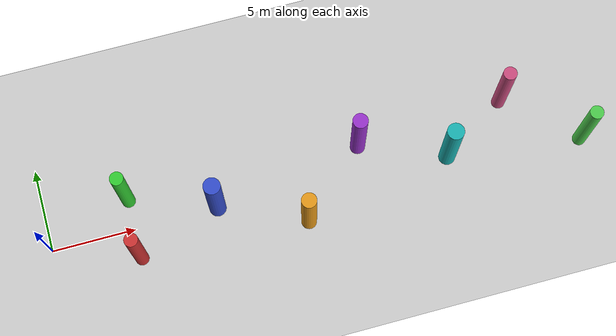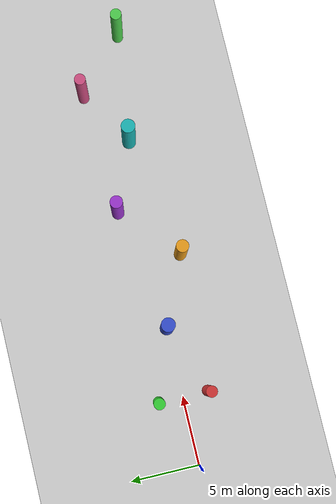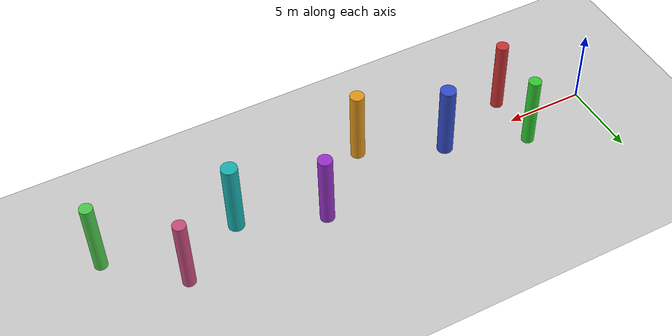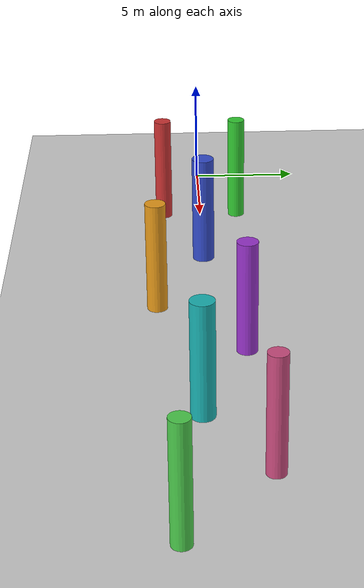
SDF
<?xml version="1.0" encoding="UTF-8"?>
<sdf version="1.9">
  <world name="pillars">
    <physics type="ode">
      <max_step_size>0.004</max_step_size>
      <real_time_factor>1.0</real_time_factor>
      <real_time_update_rate>250</real_time_update_rate>
    </physics>
    <gravity>0 0 -9.8</gravity>
    <magnetic_field>6e-06 2.3e-05 -4.2e-05</magnetic_field>
    <atmosphere type="adiabatic"/>
    <scene>
      <grid>false</grid>
      <ambient>0.4 0.4 0.4 1</ambient>
      <background>0.7 0.7 0.7 1</background>
      <shadows>true</shadows>
    </scene>

    <model name="ground_plane">
      <static>true</static>
      <link name="link">
        <collision name="collision">
          <geometry>
            <plane>
              <normal>0 0 1</normal>
              <size>250 250</size>
            </plane>
          </geometry>
          <surface>
            <friction><ode/></friction>
            <bounce/>
            <contact/>
          </surface>
        </collision>
        <visual name="visual">
          <geometry>
            <plane>
              <normal>0 0 1</normal>
              <size>250 250</size>
            </plane>
          </geometry>
          <material>
            <ambient>0.8 0.8 0.8 1</ambient>
            <diffuse>0.8 0.8 0.8 1</diffuse>
            <specular>0.8 0.8 0.8 1</specular>
          </material>
        </visual>
      </link>
    </model>

    <light name="sunUTC" type="directional">
      <pose>0 0 500 0 -0 0</pose>
      <cast_shadows>true</cast_shadows>
      <intensity>1</intensity>
      <direction>0.001 0.625 -0.78</direction>
      <diffuse>0.904 0.904 0.904 1</diffuse>
      <specular>0.271 0.271 0.271 1</specular>
    </light>

    <spherical_coordinates>
      <surface_model>EARTH_WGS84</surface_model>
      <world_frame_orientation>ENU</world_frame_orientation>
      <latitude_deg>47.397971057728974</latitude_deg>
      <longitude_deg> 8.546163739800146</longitude_deg>
      <elevation>0</elevation>
    </spherical_coordinates>

    <!-- Pillar 1: x = 5.0m, y = -1.8m -->
    <model name="pillar_1">
      <static>true</static>
      <pose>5.0 -1.8 2.5 0 0 0</pose>
      <link name="link">
        <collision name="collision">
          <geometry><cylinder><radius>0.4</radius><length>5.0</length></cylinder></geometry>
        </collision>
        <visual name="visual">
          <geometry><cylinder><radius>0.4</radius><length>5.0</length></cylinder></geometry>
          <material>
            <ambient>0.8 0.2 0.2 1</ambient>
            <diffuse>0.8 0.2 0.2 1</diffuse>
          </material>
        </visual>
      </link>
    </model>

    <!-- Pillar 2: x = 5.0m, y = 1.8m -->
    <model name="pillar_2">
      <static>true</static>
      <pose>5.0 1.8 2.5 0 0 0</pose>
      <link name="link">
        <collision name="collision">
          <geometry><cylinder><radius>0.4</radius><length>5.0</length></cylinder></geometry>
        </collision>
        <visual name="visual">
          <geometry><cylinder><radius>0.4</radius><length>5.0</length></cylinder></geometry>
          <material>
            <ambient>0.2 0.8 0.2 1</ambient>
            <diffuse>0.2 0.8 0.2 1</diffuse>
          </material>
        </visual>
      </link>
    </model>

    <!-- Pillar 3: x = 10.0m, y = 0.0m -->
    <model name="pillar_3">
      <static>true</static>
      <pose>10.0 0.0 2.5 0 0 0</pose>
      <link name="link">
        <collision name="collision">
          <geometry><cylinder><radius>0.5</radius><length>5.0</length></cylinder></geometry>
        </collision>
        <visual name="visual">
          <geometry><cylinder><radius>0.5</radius><length>5.0</length></cylinder></geometry>
          <material>
            <ambient>0.2 0.3 0.8 1</ambient>
            <diffuse>0.2 0.3 0.8 1</diffuse>
          </material>
        </visual>
      </link>
    </model>

    <!-- Pillar 4: x = 15.0m, y = -2.2m -->
    <model name="pillar_4">
      <static>true</static>
      <pose>15.0 -2.2 2.5 0 0 0</pose>
      <link name="link">
        <collision name="collision">
          <geometry><cylinder><radius>0.45</radius><length>5.0</length></cylinder></geometry>
        </collision>
        <visual name="visual">
          <geometry><cylinder><radius>0.45</radius><length>5.0</length></cylinder></geometry>
          <material>
            <ambient>0.9 0.6 0.1 1</ambient>
            <diffuse>0.9 0.6 0.1 1</diffuse>
          </material>
        </visual>
      </link>
    </model>

    <!-- Pillar 5: x = 19.0m, y = 1.5m -->
    <model name="pillar_5">
      <static>true</static>
      <pose>19.0 1.5 2.5 0 0 0</pose>
      <link name="link">
        <collision name="collision">
          <geometry><cylinder><radius>0.45</radius><length>5.0</length></cylinder></geometry>
        </collision>
        <visual name="visual">
          <geometry><cylinder><radius>0.45</radius><length>5.0</length></cylinder></geometry>
          <material>
            <ambient>0.6 0.2 0.8 1</ambient>
            <diffuse>0.6 0.2 0.8 1</diffuse>
          </material>
        </visual>
      </link>
    </model>

    <!-- Pillar 6: x = 24.0m, y = -0.5m -->
    <model name="pillar_6">
      <static>true</static>
      <pose>24.0 -0.5 2.5 0 0 0</pose>
      <link name="link">
        <collision name="collision">
          <geometry><cylinder><radius>0.5</radius><length>5.0</length></cylinder></geometry>
        </collision>
        <visual name="visual">
          <geometry><cylinder><radius>0.5</radius><length>5.0</length></cylinder></geometry>
          <material>
            <ambient>0.1 0.7 0.7 1</ambient>
            <diffuse>0.1 0.7 0.7 1</diffuse>
          </material>
        </visual>
      </link>
    </model>

    <!-- Pillar 7: x = 28.0m, y = 2.0m -->
    <model name="pillar_7">
      <static>true</static>
      <pose>28.0 2.0 2.5 0 0 0</pose>
      <link name="link">
        <collision name="collision">
          <geometry><cylinder><radius>0.4</radius><length>5.0</length></cylinder></geometry>
        </collision>
        <visual name="visual">
          <geometry><cylinder><radius>0.4</radius><length>5.0</length></cylinder></geometry>
          <material>
            <ambient>0.8 0.3 0.5 1</ambient>
            <diffuse>0.8 0.3 0.5 1</diffuse>
          </material>
        </visual>
      </link>
    </model>

    <!-- Pillar 8: x = 32.0m, y = -1.5m -->
    <model name="pillar_8">
      <static>true</static>
      <pose>32.0 -1.5 2.5 0 0 0</pose>
      <link name="link">
        <collision name="collision">
          <geometry><cylinder><radius>0.4</radius><length>5.0</length></cylinder></geometry>
        </collision>
        <visual name="visual">
          <geometry><cylinder><radius>0.4</radius><length>5.0</length></cylinder></geometry>
          <material>
            <ambient>0.3 0.8 0.3 1</ambient>
            <diffuse>0.3 0.8 0.3 1</diffuse>
          </material>
        </visual>
      </link>
    </model>

  </world>
</sdf>
